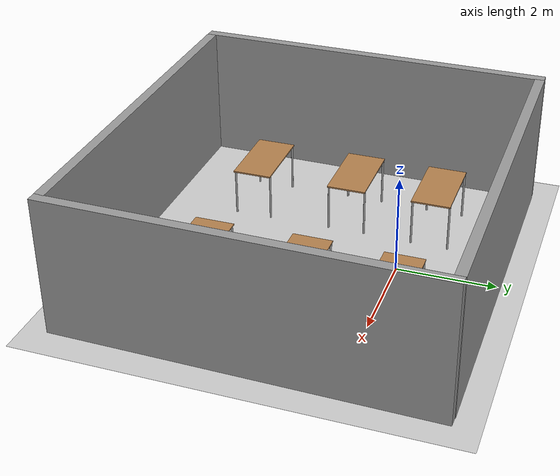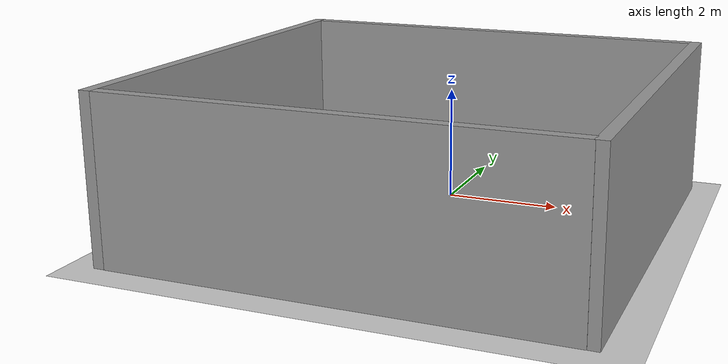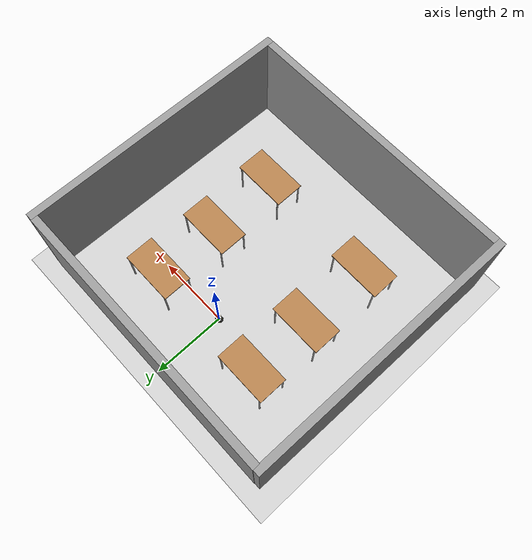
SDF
<sdf version="1.7">
 <world name="default">
  <light name="sun" type="directional">
   <pose>0 0 10 0 -0 0</pose>
   <diffuse>0.8 0.8 0.8 1</diffuse>
   <specular>0.2 0.2 0.2 1</specular>
   <attenuation>
    <range>1000</range>
    <constant>0.9</constant>
    <linear>0.01</linear>
    <quadratic>0.001</quadratic>
   </attenuation>
   <direction>-0.5 0.1 -0.9</direction>
   <spot><inner_angle>0</inner_angle><outer_angle>0</outer_angle><falloff>0</falloff></spot>
  </light>
  <model name="ground_plane">
   <static>1</static>
   <link name="link">
    <collision name="collision">
     <geometry><plane><normal>0 0 1</normal><size>100 100</size></plane></geometry>
     <surface>
      <contact><collide_bitmask>65535</collide_bitmask></contact>
      <friction><ode><mu>100</mu><mu2>50</mu2></ode></friction>
     </surface>
    </collision>
    <visual name="visual">
     <cast_shadows>0</cast_shadows>
     <geometry><plane><normal>0 0 1</normal><size>100 100</size></plane></geometry>
     <material>
      <script><uri>file://media/materials/scripts/gazebo.material</uri><name>Gazebo/Grey</name></script>
     </material>
    </visual>
   </link>
  </model>
  <gravity>0 0 -9.8</gravity>
  <magnetic_field>6e-06 2.3e-05 -4.2e-05</magnetic_field>
  <atmosphere type="adiabatic"/>
  <physics type="ode">
   <max_step_size>0.001</max_step_size>
   <real_time_factor>1</real_time_factor>
   <real_time_update_rate>1000</real_time_update_rate>
  </physics>
  <scene><ambient>0.4 0.4 0.4 1</ambient><background>0.7 0.7 0.7 1</background><shadows>1</shadows></scene>
  <spherical_coordinates>
   <surface_model>EARTH_WGS84</surface_model>
   <latitude_deg>0</latitude_deg>
   <longitude_deg>0</longitude_deg>
   <elevation>0</elevation>
   <heading_deg>0</heading_deg>
  </spherical_coordinates>
  <model name="elegoo_car_v3_description">
   <link name="base_link">
    <inertial>
     <pose>-0.015932 -0.000166 0.044202 0 -0 0</pose>
     <mass>0.468275</mass>
     <inertia>
      <ixx>0.000742718</ixx>
      <ixy>3.8042e-06</ixy>
      <ixz>0.000263808</ixz>
      <iyy>0.00224521</iyy>
      <iyz>1.31842e-06</iyz>
      <izz>0.00242747</izz>
     </inertia>
    </inertial>
    <collision name="base_link_collision">
     <geometry>
      <mesh>
       <scale>1 1 1</scale>
       <uri>/home/dan1620/aux_ws/src/smart_mini_car_robot_ros/elegoo_car_v3_description/meshes/base_link.STL</uri>
      </mesh>
     </geometry>
    </collision>
    <collision name="base_link_fixed_joint_lump__hex_support_1_collision_1">
     <geometry>
      <mesh>
       <scale>1 1 1</scale>
       <uri>/home/dan1620/aux_ws/src/smart_mini_car_robot_ros/elegoo_car_v3_description/meshes/hex_support_1.STL</uri>
      </mesh>
     </geometry>
    </collision>
    <collision name="base_link_fixed_joint_lump__hex_support_2_collision_2">
     <geometry>
      <mesh>
       <scale>1 1 1</scale>
       <uri>/home/dan1620/aux_ws/src/smart_mini_car_robot_ros/elegoo_car_v3_description/meshes/hex_support_2.STL</uri>
      </mesh>
     </geometry>
    </collision>
    <collision name="base_link_fixed_joint_lump__hex_support_3_collision_3">
     <geometry>
      <mesh>
       <scale>1 1 1</scale>
       <uri>/home/dan1620/aux_ws/src/smart_mini_car_robot_ros/elegoo_car_v3_description/meshes/hex_support_3.STL</uri>
      </mesh>
     </geometry>
    </collision>
    <collision name="base_link_fixed_joint_lump__hex_support_4_collision_4">
     <geometry>
      <mesh>
       <scale>1 1 1</scale>
       <uri>/home/dan1620/aux_ws/src/smart_mini_car_robot_ros/elegoo_car_v3_description/meshes/hex_support_4.STL</uri>
      </mesh>
     </geometry>
    </collision>
    <collision name="base_link_fixed_joint_lump__hex_support_5_collision_5">
     <geometry>
      <mesh>
       <scale>1 1 1</scale>
       <uri>/home/dan1620/aux_ws/src/smart_mini_car_robot_ros/elegoo_car_v3_description/meshes/hex_support_5.STL</uri>
      </mesh>
     </geometry>
    </collision>
    <collision name="base_link_fixed_joint_lump__hex_support_6_collision_6">
     <geometry>
      <mesh>
       <scale>1 1 1</scale>
       <uri>/home/dan1620/aux_ws/src/smart_mini_car_robot_ros/elegoo_car_v3_description/meshes/hex_support_6.STL</uri>
      </mesh>
     </geometry>
    </collision>
    <collision name="base_link_fixed_joint_lump__medium_plate_collision_7">
     <geometry>
      <mesh>
       <scale>1 1 1</scale>
       <uri>/home/dan1620/aux_ws/src/smart_mini_car_robot_ros/elegoo_car_v3_description/meshes/medium_plate.STL</uri>
      </mesh>
     </geometry>
    </collision>
    <collision name="base_link_fixed_joint_lump__arduino_collision_8">
     <geometry>
      <mesh>
       <scale>1 1 1</scale>
       <uri>/home/dan1620/aux_ws/src/smart_mini_car_robot_ros/elegoo_car_v3_description/meshes/arduino.STL</uri>
      </mesh>
     </geometry>
    </collision>
    <collision name="base_link_fixed_joint_lump__batery_collision_9">
     <geometry>
      <mesh>
       <scale>1 1 1</scale>
       <uri>/home/dan1620/aux_ws/src/smart_mini_car_robot_ros/elegoo_car_v3_description/meshes/batery.STL</uri>
      </mesh>
     </geometry>
    </collision>
    <collision name="base_link_fixed_joint_lump__servo_base_collision_10">
     <pose>0.09295 0.0001 0.0829 0 -0 0</pose>
     <geometry>
      <mesh>
       <scale>1 1 1</scale>
       <uri>/home/dan1620/aux_ws/src/smart_mini_car_robot_ros/elegoo_car_v3_description/meshes/servo_base.STL</uri>
      </mesh>
     </geometry>
    </collision>
    <collision name="base_link_fixed_joint_lump__servo_collision_11">
     <pose>0.09295 0.0001 0.0829 0 -0 0</pose>
     <geometry>
      <mesh>
       <scale>1 1 1</scale>
       <uri>/home/dan1620/aux_ws/src/smart_mini_car_robot_ros/elegoo_car_v3_description/meshes/servo.STL</uri>
      </mesh>
     </geometry>
    </collision>
    <collision name="base_link_fixed_joint_lump__support_1_collision_12">
     <pose>0.040775 0.027 0.03195 0 -0 0</pose>
     <geometry>
      <mesh>
       <scale>1 1 1</scale>
       <uri>/home/dan1620/aux_ws/src/smart_mini_car_robot_ros/elegoo_car_v3_description/meshes/support_1.STL</uri>
      </mesh>
     </geometry>
    </collision>
    <collision name="base_link_fixed_joint_lump__motor_1_collision_13">
     <pose>0.040775 0.027 0.03195 0 -0 0</pose>
     <geometry>
      <mesh>
       <scale>1 1 1</scale>
       <uri>/home/dan1620/aux_ws/src/smart_mini_car_robot_ros/elegoo_car_v3_description/meshes/motor_1.STL</uri>
      </mesh>
     </geometry>
    </collision>
    <collision name="base_link_fixed_joint_lump__support_2_collision_14">
     <pose>-0.040775 0.027 0.03195 0 -0 0</pose>
     <geometry>
      <mesh>
       <scale>1 1 1</scale>
       <uri>/home/dan1620/aux_ws/src/smart_mini_car_robot_ros/elegoo_car_v3_description/meshes/support_2.STL</uri>
      </mesh>
     </geometry>
    </collision>
    <collision name="base_link_fixed_joint_lump__motor_2_collision_15">
     <pose>-0.040775 0.027 0.03195 0 -0 0</pose>
     <geometry>
      <mesh>
       <scale>1 1 1</scale>
       <uri>/home/dan1620/aux_ws/src/smart_mini_car_robot_ros/elegoo_car_v3_description/meshes/motor_2.STL</uri>
      </mesh>
     </geometry>
    </collision>
    <collision name="base_link_fixed_joint_lump__support_3_collision_16">
     <pose>-0.040775 -0.027 0.03195 0 -0 0</pose>
     <geometry>
      <mesh>
       <scale>1 1 1</scale>
       <uri>/home/dan1620/aux_ws/src/smart_mini_car_robot_ros/elegoo_car_v3_description/meshes/support_3.STL</uri>
      </mesh>
     </geometry>
    </collision>
    <collision name="base_link_fixed_joint_lump__motor_3_collision_17">
     <pose>-0.040775 -0.027 0.03195 0 -0 0</pose>
     <geometry>
      <mesh>
       <scale>1 1 1</scale>
       <uri>/home/dan1620/aux_ws/src/smart_mini_car_robot_ros/elegoo_car_v3_description/meshes/motor_3.STL</uri>
      </mesh>
     </geometry>
    </collision>
    <collision name="base_link_fixed_joint_lump__suppport_4_collision_18">
     <pose>0.040775 -0.027 0.03195 0 -0 0</pose>
     <geometry>
      <mesh>
       <scale>1 1 1</scale>
       <uri>/home/dan1620/aux_ws/src/smart_mini_car_robot_ros/elegoo_car_v3_description/meshes/suppport_4.STL</uri>
      </mesh>
     </geometry>
    </collision>
    <collision name="base_link_fixed_joint_lump__motor_4_collision_19">
     <pose>0.040775 -0.027 0.03195 0 -0 0</pose>
     <geometry>
      <mesh>
       <scale>1 1 1</scale>
       <uri>/home/dan1620/aux_ws/src/smart_mini_car_robot_ros/elegoo_car_v3_description/meshes/motor_4.STL</uri>
      </mesh>
     </geometry>
    </collision>
    <visual name="base_link_visual">
     <geometry>
      <mesh>
       <scale>1 1 1</scale>
       <uri>/home/dan1620/aux_ws/src/smart_mini_car_robot_ros/elegoo_car_v3_description/meshes/base_link.STL</uri>
      </mesh>
     </geometry>
     <material>
      <script><name>Gazebo/FlatBlack</name><uri>file://media/materials/scripts/gazebo.material</uri></script>
     </material>
    </visual>
    <visual name="base_link_fixed_joint_lump__hex_support_1_visual_1">
     <geometry>
      <mesh>
       <scale>1 1 1</scale>
       <uri>/home/dan1620/aux_ws/src/smart_mini_car_robot_ros/elegoo_car_v3_description/meshes/hex_support_1.STL</uri>
      </mesh>
     </geometry>
     <material>
      <script><name>Gazebo/Gold</name><uri>file://media/materials/scripts/gazebo.material</uri></script>
     </material>
    </visual>
    <visual name="base_link_fixed_joint_lump__hex_support_2_visual_2">
     <geometry>
      <mesh>
       <scale>1 1 1</scale>
       <uri>/home/dan1620/aux_ws/src/smart_mini_car_robot_ros/elegoo_car_v3_description/meshes/hex_support_2.STL</uri>
      </mesh>
     </geometry>
     <material>
      <script><name>Gazebo/Gold</name><uri>file://media/materials/scripts/gazebo.material</uri></script>
     </material>
    </visual>
    <visual name="base_link_fixed_joint_lump__hex_support_3_visual_3">
     <geometry>
      <mesh>
       <scale>1 1 1</scale>
       <uri>/home/dan1620/aux_ws/src/smart_mini_car_robot_ros/elegoo_car_v3_description/meshes/hex_support_3.STL</uri>
      </mesh>
     </geometry>
     <material>
      <script><name>Gazebo/Gold</name><uri>file://media/materials/scripts/gazebo.material</uri></script>
     </material>
    </visual>
    <visual name="base_link_fixed_joint_lump__hex_support_4_visual_4">
     <geometry>
      <mesh>
       <scale>1 1 1</scale>
       <uri>/home/dan1620/aux_ws/src/smart_mini_car_robot_ros/elegoo_car_v3_description/meshes/hex_support_4.STL</uri>
      </mesh>
     </geometry>
     <material>
      <script><name>Gazebo/Gold</name><uri>file://media/materials/scripts/gazebo.material</uri></script>
     </material>
    </visual>
    <visual name="base_link_fixed_joint_lump__hex_support_5_visual_5">
     <geometry>
      <mesh>
       <scale>1 1 1</scale>
       <uri>/home/dan1620/aux_ws/src/smart_mini_car_robot_ros/elegoo_car_v3_description/meshes/hex_support_5.STL</uri>
      </mesh>
     </geometry>
     <material>
      <script><name>Gazebo/Gold</name><uri>file://media/materials/scripts/gazebo.material</uri></script>
     </material>
    </visual>
    <visual name="base_link_fixed_joint_lump__hex_support_6_visual_6">
     <geometry>
      <mesh>
       <scale>1 1 1</scale>
       <uri>/home/dan1620/aux_ws/src/smart_mini_car_robot_ros/elegoo_car_v3_description/meshes/hex_support_6.STL</uri>
      </mesh>
     </geometry>
     <material>
      <script><name>Gazebo/Gold</name><uri>file://media/materials/scripts/gazebo.material</uri></script>
     </material>
    </visual>
    <visual name="base_link_fixed_joint_lump__medium_plate_visual_7">
     <geometry>
      <mesh>
       <scale>1 1 1</scale>
       <uri>/home/dan1620/aux_ws/src/smart_mini_car_robot_ros/elegoo_car_v3_description/meshes/medium_plate.STL</uri>
      </mesh>
     </geometry>
     <material>
      <script><name>Gazebo/FlatBlack</name><uri>file://media/materials/scripts/gazebo.material</uri></script>
     </material>
    </visual>
    <visual name="base_link_fixed_joint_lump__arduino_visual_8">
     <geometry>
      <mesh>
       <scale>1 1 1</scale>
       <uri>/home/dan1620/aux_ws/src/smart_mini_car_robot_ros/elegoo_car_v3_description/meshes/arduino.STL</uri>
      </mesh>
     </geometry>
     <material>
      <script><name>Gazebo/DarkGray</name><uri>file://media/materials/scripts/gazebo.material</uri></script>
     </material>
    </visual>
    <visual name="base_link_fixed_joint_lump__batery_visual_9">
     <geometry>
      <mesh>
       <scale>1 1 1</scale>
       <uri>/home/dan1620/aux_ws/src/smart_mini_car_robot_ros/elegoo_car_v3_description/meshes/batery.STL</uri>
      </mesh>
     </geometry>
     <material>
      <script><name>Gazebo/FlatBlack</name><uri>file://media/materials/scripts/gazebo.material</uri></script>
     </material>
    </visual>
    <visual name="base_link_fixed_joint_lump__servo_base_visual_10">
     <pose>0.09295 0.0001 0.0829 0 -0 0</pose>
     <geometry>
      <mesh>
       <scale>1 1 1</scale>
       <uri>/home/dan1620/aux_ws/src/smart_mini_car_robot_ros/elegoo_car_v3_description/meshes/servo_base.STL</uri>
      </mesh>
     </geometry>
     <material>
      <script><name>Gazebo/Black</name><uri>file://media/materials/scripts/gazebo.material</uri></script>
     </material>
    </visual>
    <visual name="base_link_fixed_joint_lump__servo_visual_11">
     <pose>0.09295 0.0001 0.0829 0 -0 0</pose>
     <geometry>
      <mesh>
       <scale>1 1 1</scale>
       <uri>/home/dan1620/aux_ws/src/smart_mini_car_robot_ros/elegoo_car_v3_description/meshes/servo.STL</uri>
      </mesh>
     </geometry>
     <material>
      <script><name>Gazebo/Blue</name><uri>file://media/materials/scripts/gazebo.material</uri></script>
     </material>
    </visual>
    <visual name="base_link_fixed_joint_lump__support_1_visual_12">
     <pose>0.040775 0.027 0.03195 0 -0 0</pose>
     <geometry>
      <mesh>
       <scale>1 1 1</scale>
       <uri>/home/dan1620/aux_ws/src/smart_mini_car_robot_ros/elegoo_car_v3_description/meshes/support_1.STL</uri>
      </mesh>
     </geometry>
     <material>
      <script><name>Gazebo/Grey</name><uri>file://media/materials/scripts/gazebo.material</uri></script>
     </material>
    </visual>
    <visual name="base_link_fixed_joint_lump__motor_1_visual_13">
     <pose>0.040775 0.027 0.03195 0 -0 0</pose>
     <geometry>
      <mesh>
       <scale>1 1 1</scale>
       <uri>/home/dan1620/aux_ws/src/smart_mini_car_robot_ros/elegoo_car_v3_description/meshes/motor_1.STL</uri>
      </mesh>
     </geometry>
     <material>
      <script><name>Gazebo/Yellow</name><uri>file://media/materials/scripts/gazebo.material</uri></script>
     </material>
    </visual>
    <visual name="base_link_fixed_joint_lump__support_2_visual_14">
     <pose>-0.040775 0.027 0.03195 0 -0 0</pose>
     <geometry>
      <mesh>
       <scale>1 1 1</scale>
       <uri>/home/dan1620/aux_ws/src/smart_mini_car_robot_ros/elegoo_car_v3_description/meshes/support_2.STL</uri>
      </mesh>
     </geometry>
     <material>
      <script><name>Gazebo/Grey</name><uri>file://media/materials/scripts/gazebo.material</uri></script>
     </material>
    </visual>
    <visual name="base_link_fixed_joint_lump__motor_2_visual_15">
     <pose>-0.040775 0.027 0.03195 0 -0 0</pose>
     <geometry>
      <mesh>
       <scale>1 1 1</scale>
       <uri>/home/dan1620/aux_ws/src/smart_mini_car_robot_ros/elegoo_car_v3_description/meshes/motor_2.STL</uri>
      </mesh>
     </geometry>
     <material>
      <script><name>Gazebo/Yellow</name><uri>file://media/materials/scripts/gazebo.material</uri></script>
     </material>
    </visual>
    <visual name="base_link_fixed_joint_lump__support_3_visual_16">
     <pose>-0.040775 -0.027 0.03195 0 -0 0</pose>
     <geometry>
      <mesh>
       <scale>1 1 1</scale>
       <uri>/home/dan1620/aux_ws/src/smart_mini_car_robot_ros/elegoo_car_v3_description/meshes/support_3.STL</uri>
      </mesh>
     </geometry>
     <material>
      <script><name>Gazebo/Grey</name><uri>file://media/materials/scripts/gazebo.material</uri></script>
     </material>
    </visual>
    <visual name="base_link_fixed_joint_lump__motor_3_visual_17">
     <pose>-0.040775 -0.027 0.03195 0 -0 0</pose>
     <geometry>
      <mesh>
       <scale>1 1 1</scale>
       <uri>/home/dan1620/aux_ws/src/smart_mini_car_robot_ros/elegoo_car_v3_description/meshes/motor_3.STL</uri>
      </mesh>
     </geometry>
     <material>
      <script><name>Gazebo/Yellow</name><uri>file://media/materials/scripts/gazebo.material</uri></script>
     </material>
    </visual>
    <visual name="base_link_fixed_joint_lump__suppport_4_visual_18">
     <pose>0.040775 -0.027 0.03195 0 -0 0</pose>
     <geometry>
      <mesh>
       <scale>1 1 1</scale>
       <uri>/home/dan1620/aux_ws/src/smart_mini_car_robot_ros/elegoo_car_v3_description/meshes/suppport_4.STL</uri>
      </mesh>
     </geometry>
    </visual>
    <visual name="base_link_fixed_joint_lump__motor_4_visual_19">
     <pose>0.040775 -0.027 0.03195 0 -0 0</pose>
     <geometry>
      <mesh>
       <scale>1 1 1</scale>
       <uri>/home/dan1620/aux_ws/src/smart_mini_car_robot_ros/elegoo_car_v3_description/meshes/motor_4.STL</uri>
      </mesh>
     </geometry>
     <material>
      <script><name>Gazebo/Yellow</name><uri>file://media/materials/scripts/gazebo.material</uri></script>
     </material>
    </visual>
   </link>
   <joint name="servo_to_shaft" type="revolute">
    <pose relative_to="base_link">0.09295 0.0001 0.0829 0 -0 0</pose>
    <parent>base_link</parent>
    <child>servo_shaft</child>
    <axis>
     <xyz>0 0 1</xyz>
     <limit><effort>0.0907</effort><velocity>0.7</velocity><lower>-1e+16</lower><upper>1e+16</upper></limit>
     <dynamics><spring_reference>0</spring_reference><spring_stiffness>0</spring_stiffness></dynamics>
    </axis>
   </joint>
   <link name="servo_shaft">
    <pose relative_to="servo_to_shaft">0 0 0 0 -0 0</pose>
    <inertial>
     <pose>0.009808 -5e-06 0.020358 0 -0 0</pose>
     <mass>0.0159664</mass>
     <inertia>
      <ixx>4.09729e-06</ixx>
      <ixy>-1.24826e-09</ixy>
      <ixz>-3.55825e-07</ixz>
      <iyy>1.83275e-06</iyy>
      <iyz>1.76037e-10</iyz>
      <izz>3.30479e-06</izz>
     </inertia>
    </inertial>
    <collision name="servo_shaft_collision">
     <geometry>
      <mesh>
       <scale>1 1 1</scale>
       <uri>/home/dan1620/aux_ws/src/smart_mini_car_robot_ros/elegoo_car_v3_description/meshes/servo_shaft.STL</uri>
      </mesh>
     </geometry>
    </collision>
    <collision name="servo_shaft_fixed_joint_lump__ultrasonic_support_collision_1">
     <geometry>
      <mesh>
       <scale>1 1 1</scale>
       <uri>/home/dan1620/aux_ws/src/smart_mini_car_robot_ros/elegoo_car_v3_description/meshes/ultrasonic_support.STL</uri>
      </mesh>
     </geometry>
    </collision>
    <collision name="servo_shaft_fixed_joint_lump__ultrasonic_sensor_collision_2">
     <geometry>
      <mesh>
       <scale>1 1 1</scale>
       <uri>/home/dan1620/aux_ws/src/smart_mini_car_robot_ros/elegoo_car_v3_description/meshes/ultrasonic_sensor.STL</uri>
      </mesh>
     </geometry>
    </collision>
    <visual name="servo_shaft_visual">
     <geometry>
      <mesh>
       <scale>1 1 1</scale>
       <uri>/home/dan1620/aux_ws/src/smart_mini_car_robot_ros/elegoo_car_v3_description/meshes/servo_shaft.STL</uri>
      </mesh>
     </geometry>
     <material>
      <script><name>Gazebo/Grey</name><uri>file://media/materials/scripts/gazebo.material</uri></script>
     </material>
    </visual>
    <visual name="servo_shaft_fixed_joint_lump__ultrasonic_support_visual_1">
     <geometry>
      <mesh>
       <scale>1 1 1</scale>
       <uri>/home/dan1620/aux_ws/src/smart_mini_car_robot_ros/elegoo_car_v3_description/meshes/ultrasonic_support.STL</uri>
      </mesh>
     </geometry>
     <material>
      <script><name>Gazebo/Black</name><uri>file://media/materials/scripts/gazebo.material</uri></script>
     </material>
    </visual>
    <visual name="servo_shaft_fixed_joint_lump__ultrasonic_sensor_visual_2">
     <geometry>
      <mesh>
       <scale>1 1 1</scale>
       <uri>/home/dan1620/aux_ws/src/smart_mini_car_robot_ros/elegoo_car_v3_description/meshes/ultrasonic_sensor.STL</uri>
      </mesh>
     </geometry>
     <material>
      <script><name>Gazebo/Blue</name><uri>file://media/materials/scripts/gazebo.material</uri></script>
     </material>
    </visual>
    <sensor name="sonar" type="ray">
     <update_rate>5</update_rate>
     <ray>
      <scan>
       <horizontal>
        <samples>5</samples>
        <resolution>1</resolution>
        <min_angle>-0.15</min_angle>
        <max_angle>0.15</max_angle>
       </horizontal>
       <vertical>
        <samples>5</samples>
        <resolution>1</resolution>
        <min_angle>-0.15</min_angle>
        <max_angle>0.15</max_angle>
       </vertical>
      </scan>
      <range><min>0.04</min><max>0.9</max><resolution>0.01</resolution></range>
     </ray>
     <plugin name="gazebo_ros_range" filename="libgazebo_ros_range.so">
      <gaussianNoise>0.005</gaussianNoise>
      <alwaysOn>1</alwaysOn>
      <updateRate>5</updateRate>
      <topicName>sonar</topicName>
      <frameName>ultrasonic_sensor</frameName>
      <fov>0.5</fov>
      <radiation>ultrasound</radiation>
      <robotNamespace>/</robotNamespace>
     </plugin>
     <pose>0.02 0 0.04 3.14159 -1.57079 3.14159</pose>
    </sensor>
   </link>
   <joint name="motor_to_shaft_1" type="revolute">
    <pose relative_to="base_link">0.040775 0.027 0.03195 0 -0 0</pose>
    <parent>base_link</parent>
    <child>shaft_1</child>
    <axis>
     <xyz>0 1 0</xyz>
     <limit><effort>0.09807</effort><velocity>23</velocity><lower>-1e+16</lower><upper>1e+16</upper></limit>
     <dynamics><spring_reference>0</spring_reference><spring_stiffness>0</spring_stiffness></dynamics>
    </axis>
   </joint>
   <link name="shaft_1">
    <pose relative_to="motor_to_shaft_1">0 0 0 0 -0 0</pose>
    <inertial>
     <pose>-0 0.043607 -0 0 -0 0</pose>
     <mass>0.0614214</mass>
     <inertia>
      <ixx>2.54849e-05</ixx>
      <ixy>4.47094e-13</ixy>
      <ixz>-1.11546e-12</ixz>
      <iyy>4.28891e-05</iyy>
      <iyz>1.13462e-13</iyz>
      <izz>2.54849e-05</izz>
     </inertia>
    </inertial>
    <collision name="shaft_1_collision">
     <geometry>
      <mesh>
       <scale>1 1 1</scale>
       <uri>/home/dan1620/aux_ws/src/smart_mini_car_robot_ros/elegoo_car_v3_description/meshes/shaft_1.STL</uri>
      </mesh>
     </geometry>
    </collision>
    <collision name="shaft_1_fixed_joint_lump__ring_1_collision_1">
     <geometry>
      <mesh>
       <scale>1 1 1</scale>
       <uri>/home/dan1620/aux_ws/src/smart_mini_car_robot_ros/elegoo_car_v3_description/meshes/ring_1.STL</uri>
      </mesh>
     </geometry>
    </collision>
    <collision name="shaft_1_fixed_joint_lump__neumatic_1_collision_2">
     <geometry>
      <mesh>
       <scale>1 1 1</scale>
       <uri>/home/dan1620/aux_ws/src/smart_mini_car_robot_ros/elegoo_car_v3_description/meshes/neumatic_1.STL</uri>
      </mesh>
     </geometry>
     <surface>
      <contact><ode><kp>500000</kp><kd>10</kd><max_vel>0.1</max_vel><min_depth>0.001</min_depth></ode></contact>
      <friction><ode><mu>0.1</mu><mu2>0.1</mu2><fdir1>1 0 0</fdir1></ode></friction>
     </surface>
    </collision>
    <visual name="shaft_1_visual">
     <geometry>
      <mesh>
       <scale>1 1 1</scale>
       <uri>/home/dan1620/aux_ws/src/smart_mini_car_robot_ros/elegoo_car_v3_description/meshes/shaft_1.STL</uri>
      </mesh>
     </geometry>
     <material>
      <script><name>Gazebo/Grey</name><uri>file://media/materials/scripts/gazebo.material</uri></script>
     </material>
    </visual>
    <visual name="shaft_1_fixed_joint_lump__ring_1_visual_1">
     <geometry>
      <mesh>
       <scale>1 1 1</scale>
       <uri>/home/dan1620/aux_ws/src/smart_mini_car_robot_ros/elegoo_car_v3_description/meshes/ring_1.STL</uri>
      </mesh>
     </geometry>
     <material>
      <script><name>Gazebo/Yellow</name><uri>file://media/materials/scripts/gazebo.material</uri></script>
     </material>
    </visual>
    <visual name="shaft_1_fixed_joint_lump__neumatic_1_visual_2">
     <geometry>
      <mesh>
       <scale>1 1 1</scale>
       <uri>/home/dan1620/aux_ws/src/smart_mini_car_robot_ros/elegoo_car_v3_description/meshes/neumatic_1.STL</uri>
      </mesh>
     </geometry>
     <material>
      <script><name>Gazebo/FlatBlack</name><uri>file://media/materials/scripts/gazebo.material</uri></script>
     </material>
    </visual>
   </link>
   <joint name="motor_to_shaft_2" type="revolute">
    <pose relative_to="base_link">-0.040775 0.027 0.03195 0 -0 0</pose>
    <parent>base_link</parent>
    <child>shaft_2</child>
    <axis>
     <xyz>0 1 0</xyz>
     <limit><effort>0.09807</effort><velocity>23</velocity><lower>-1e+16</lower><upper>1e+16</upper></limit>
     <dynamics><spring_reference>0</spring_reference><spring_stiffness>0</spring_stiffness></dynamics>
    </axis>
   </joint>
   <link name="shaft_2">
    <pose relative_to="motor_to_shaft_2">0 0 0 0 -0 0</pose>
    <inertial>
     <pose>0 0.043607 -0 0 -0 0</pose>
     <mass>0.0614214</mass>
     <inertia>
      <ixx>2.54849e-05</ixx>
      <ixy>-3.45515e-13</ixy>
      <ixz>1.43964e-12</ixz>
      <iyy>4.28891e-05</iyy>
      <iyz>3.05554e-13</iyz>
      <izz>2.54849e-05</izz>
     </inertia>
    </inertial>
    <collision name="shaft_2_collision">
     <geometry>
      <mesh>
       <scale>1 1 1</scale>
       <uri>/home/dan1620/aux_ws/src/smart_mini_car_robot_ros/elegoo_car_v3_description/meshes/shaft_2.STL</uri>
      </mesh>
     </geometry>
    </collision>
    <collision name="shaft_2_fixed_joint_lump__ring_2_collision_1">
     <geometry>
      <mesh>
       <scale>1 1 1</scale>
       <uri>/home/dan1620/aux_ws/src/smart_mini_car_robot_ros/elegoo_car_v3_description/meshes/ring_2.STL</uri>
      </mesh>
     </geometry>
    </collision>
    <collision name="shaft_2_fixed_joint_lump__neumatic_2_collision_2">
     <geometry>
      <mesh>
       <scale>1 1 1</scale>
       <uri>/home/dan1620/aux_ws/src/smart_mini_car_robot_ros/elegoo_car_v3_description/meshes/neumatic_2.STL</uri>
      </mesh>
     </geometry>
     <surface>
      <contact><ode><kp>500000</kp><kd>10</kd><max_vel>0.1</max_vel><min_depth>0.001</min_depth></ode></contact>
      <friction><ode><mu>0.1</mu><mu2>0.1</mu2><fdir1>1 0 0</fdir1></ode></friction>
     </surface>
    </collision>
    <visual name="shaft_2_visual">
     <geometry>
      <mesh>
       <scale>1 1 1</scale>
       <uri>/home/dan1620/aux_ws/src/smart_mini_car_robot_ros/elegoo_car_v3_description/meshes/shaft_2.STL</uri>
      </mesh>
     </geometry>
     <material>
      <script><name>Gazebo/Grey</name><uri>file://media/materials/scripts/gazebo.material</uri></script>
     </material>
    </visual>
    <visual name="shaft_2_fixed_joint_lump__ring_2_visual_1">
     <geometry>
      <mesh>
       <scale>1 1 1</scale>
       <uri>/home/dan1620/aux_ws/src/smart_mini_car_robot_ros/elegoo_car_v3_description/meshes/ring_2.STL</uri>
      </mesh>
     </geometry>
     <material>
      <script><name>Gazebo/Yellow</name><uri>file://media/materials/scripts/gazebo.material</uri></script>
     </material>
    </visual>
    <visual name="shaft_2_fixed_joint_lump__neumatic_2_visual_2">
     <geometry>
      <mesh>
       <scale>1 1 1</scale>
       <uri>/home/dan1620/aux_ws/src/smart_mini_car_robot_ros/elegoo_car_v3_description/meshes/neumatic_2.STL</uri>
      </mesh>
     </geometry>
     <material>
      <script><name>Gazebo/FlatBlack</name><uri>file://media/materials/scripts/gazebo.material</uri></script>
     </material>
    </visual>
   </link>
   <joint name="motor_to_shaft_3" type="revolute">
    <pose relative_to="base_link">-0.040775 -0.027 0.03195 0 -0 0</pose>
    <parent>base_link</parent>
    <child>shaft_3</child>
    <axis>
     <xyz>0 1 0</xyz>
     <limit><effort>0.09807</effort><velocity>23</velocity><lower>-1e+16</lower><upper>1e+16</upper></limit>
     <dynamics><spring_reference>0</spring_reference><spring_stiffness>0</spring_stiffness></dynamics>
    </axis>
   </joint>
   <link name="shaft_3">
    <pose relative_to="motor_to_shaft_3">0 0 0 0 -0 0</pose>
    <inertial>
     <pose>-0 -0.043607 0 0 -0 0</pose>
     <mass>0.0614214</mass>
     <inertia>
      <ixx>2.54849e-05</ixx>
      <ixy>-4.47067e-13</ixy>
      <ixz>1.11546e-12</ixz>
      <iyy>4.28891e-05</iyy>
      <iyz>1.13485e-13</iyz>
      <izz>2.54849e-05</izz>
     </inertia>
    </inertial>
    <collision name="shaft_3_collision">
     <geometry>
      <mesh>
       <scale>1 1 1</scale>
       <uri>/home/dan1620/aux_ws/src/smart_mini_car_robot_ros/elegoo_car_v3_description/meshes/shaft_3.STL</uri>
      </mesh>
     </geometry>
    </collision>
    <collision name="shaft_3_fixed_joint_lump__ring_3_collision_1">
     <geometry>
      <mesh>
       <scale>1 1 1</scale>
       <uri>/home/dan1620/aux_ws/src/smart_mini_car_robot_ros/elegoo_car_v3_description/meshes/ring_3.STL</uri>
      </mesh>
     </geometry>
    </collision>
    <collision name="shaft_3_fixed_joint_lump__neumatic_3_collision_2">
     <geometry>
      <mesh>
       <scale>1 1 1</scale>
       <uri>/home/dan1620/aux_ws/src/smart_mini_car_robot_ros/elegoo_car_v3_description/meshes/neumatic_3.STL</uri>
      </mesh>
     </geometry>
     <surface>
      <contact><ode><kp>500000</kp><kd>10</kd><max_vel>0.1</max_vel><min_depth>0.001</min_depth></ode></contact>
      <friction><ode><mu>0.1</mu><mu2>0.1</mu2><fdir1>1 0 0</fdir1></ode></friction>
     </surface>
    </collision>
    <visual name="shaft_3_visual">
     <geometry>
      <mesh>
       <scale>1 1 1</scale>
       <uri>/home/dan1620/aux_ws/src/smart_mini_car_robot_ros/elegoo_car_v3_description/meshes/shaft_3.STL</uri>
      </mesh>
     </geometry>
     <material>
      <script><name>Gazebo/Grey</name><uri>file://media/materials/scripts/gazebo.material</uri></script>
     </material>
    </visual>
    <visual name="shaft_3_fixed_joint_lump__ring_3_visual_1">
     <geometry>
      <mesh>
       <scale>1 1 1</scale>
       <uri>/home/dan1620/aux_ws/src/smart_mini_car_robot_ros/elegoo_car_v3_description/meshes/ring_3.STL</uri>
      </mesh>
     </geometry>
     <material>
      <script><name>Gazebo/Yellow</name><uri>file://media/materials/scripts/gazebo.material</uri></script>
     </material>
    </visual>
    <visual name="shaft_3_fixed_joint_lump__neumatic_3_visual_2">
     <geometry>
      <mesh>
       <scale>1 1 1</scale>
       <uri>/home/dan1620/aux_ws/src/smart_mini_car_robot_ros/elegoo_car_v3_description/meshes/neumatic_3.STL</uri>
      </mesh>
     </geometry>
     <material>
      <script><name>Gazebo/FlatBlack</name><uri>file://media/materials/scripts/gazebo.material</uri></script>
     </material>
    </visual>
   </link>
   <joint name="motor_to_shaft_4" type="revolute">
    <pose relative_to="base_link">0.040775 -0.027 0.03195 0 -0 0</pose>
    <parent>base_link</parent>
    <child>shaft_4</child>
    <axis>
     <xyz>0 1 0</xyz>
     <limit><effort>0.09807</effort><velocity>23</velocity><lower>-1e+16</lower><upper>1e+16</upper></limit>
     <dynamics><spring_reference>0</spring_reference><spring_stiffness>0</spring_stiffness></dynamics>
    </axis>
   </joint>
   <link name="shaft_4">
    <pose relative_to="motor_to_shaft_4">0 0 0 0 -0 0</pose>
    <inertial>
     <pose>0 -0.043607 0 0 -0 0</pose>
     <mass>0.0614214</mass>
     <inertia>
      <ixx>2.54849e-05</ixx>
      <ixy>3.4553e-13</ixy>
      <ixz>-1.43964e-12</ixz>
      <iyy>4.28891e-05</iyy>
      <iyz>3.05586e-13</iyz>
      <izz>2.54849e-05</izz>
     </inertia>
    </inertial>
    <collision name="shaft_4_collision">
     <geometry>
      <mesh>
       <scale>1 1 1</scale>
       <uri>/home/dan1620/aux_ws/src/smart_mini_car_robot_ros/elegoo_car_v3_description/meshes/shaft_4.STL</uri>
      </mesh>
     </geometry>
    </collision>
    <collision name="shaft_4_fixed_joint_lump__ring_4_collision_1">
     <geometry>
      <mesh>
       <scale>1 1 1</scale>
       <uri>/home/dan1620/aux_ws/src/smart_mini_car_robot_ros/elegoo_car_v3_description/meshes/ring_4.STL</uri>
      </mesh>
     </geometry>
    </collision>
    <collision name="shaft_4_fixed_joint_lump__neumatic_4_collision_2">
     <geometry>
      <mesh>
       <scale>1 1 1</scale>
       <uri>/home/dan1620/aux_ws/src/smart_mini_car_robot_ros/elegoo_car_v3_description/meshes/neumatic_4.STL</uri>
      </mesh>
     </geometry>
     <surface>
      <contact><ode><kp>500000</kp><kd>10</kd><max_vel>0.1</max_vel><min_depth>0.001</min_depth></ode></contact>
      <friction><ode><mu>0.1</mu><mu2>0.1</mu2><fdir1>1 0 0</fdir1></ode></friction>
     </surface>
    </collision>
    <visual name="shaft_4_visual">
     <geometry>
      <mesh>
       <scale>1 1 1</scale>
       <uri>/home/dan1620/aux_ws/src/smart_mini_car_robot_ros/elegoo_car_v3_description/meshes/shaft_4.STL</uri>
      </mesh>
     </geometry>
     <material>
      <script><name>Gazebo/Grey</name><uri>file://media/materials/scripts/gazebo.material</uri></script>
     </material>
    </visual>
    <visual name="shaft_4_fixed_joint_lump__ring_4_visual_1">
     <geometry>
      <mesh>
       <scale>1 1 1</scale>
       <uri>/home/dan1620/aux_ws/src/smart_mini_car_robot_ros/elegoo_car_v3_description/meshes/ring_4.STL</uri>
      </mesh>
     </geometry>
     <material>
      <script><name>Gazebo/Yellow</name><uri>file://media/materials/scripts/gazebo.material</uri></script>
     </material>
    </visual>
    <visual name="shaft_4_fixed_joint_lump__neumatic_4_visual_2">
     <geometry>
      <mesh>
       <scale>1 1 1</scale>
       <uri>/home/dan1620/aux_ws/src/smart_mini_car_robot_ros/elegoo_car_v3_description/meshes/neumatic_4.STL</uri>
      </mesh>
     </geometry>
     <material>
      <script><name>Gazebo/FlatBlack</name><uri>file://media/materials/scripts/gazebo.material</uri></script>
     </material>
    </visual>
   </link>
   <static>0</static>
   <plugin name="skid_steer_drive_controller" filename="libgazebo_ros_skid_steer_drive.so">
    <updateRate>100.0</updateRate>
    <robotNamespace>/</robotNamespace>
    <leftFrontJoint>motor_to_shaft_1</leftFrontJoint>
    <rightFrontJoint>motor_to_shaft_4</rightFrontJoint>
    <rightRearJoint>motor_to_shaft_3</rightRearJoint>
    <leftRearJoint>motor_to_shaft_2</leftRearJoint>
    <wheelSeparation>0.11631</wheelSeparation>
    <wheelDiameter>0.06405</wheelDiameter>
    <robotBaseFrame>base_link</robotBaseFrame>
    <torque>20</torque>
    <topicName>cmd_vel</topicName>
    <broadcastTF>1</broadcastTF>
    <covariance_x>0.0001</covariance_x>
    <covariance_y>0.0001</covariance_y>
    <covariance_yaw>0.01</covariance_yaw>
    <topicName>cmd_vel</topicName>
    <commandTopic>cmd_vel</commandTopic>
    <odometryTopic>odom</odometryTopic>
    <odometryFrame>odom</odometryFrame>
    <topic_name_joint>joint</topic_name_joint>
   </plugin>
   <pose>-0.0033 0.000136 -0.000441 -0.000598 -0.00548 0.003521</pose>
  </model>
  <model name="grey_wall">
   <static>1</static>
   <link name="link">
    <pose>0 0 1.4 0 -0 0</pose>
    <collision name="collision"><geometry><box><size>7.5 0.2 2.8</size></box></geometry></collision>
    <visual name="visual">
     <cast_shadows>0</cast_shadows>
     <geometry><box><size>7.5 0.2 2.8</size></box></geometry>
     <material>
      <script>
       <uri>model://grey_wall/materials/scripts</uri>
       <uri>model://grey_wall/materials/textures</uri>
       <name>vrc/grey_wall</name>
      </script>
     </material>
    </visual>
   </link>
   <pose>0.167216 1.96885 0 0 -0 0</pose>
  </model>
  <model name="grey_wall_0">
   <static>1</static>
   <link name="link">
    <pose>0 0 1.4 0 -0 0</pose>
    <collision name="collision"><geometry><box><size>7.5 0.2 2.8</size></box></geometry></collision>
    <visual name="visual">
     <cast_shadows>0</cast_shadows>
     <geometry><box><size>7.5 0.2 2.8</size></box></geometry>
     <material>
      <script>
       <uri>model://grey_wall/materials/scripts</uri>
       <uri>model://grey_wall/materials/textures</uri>
       <name>vrc/grey_wall</name>
      </script>
     </material>
    </visual>
   </link>
   <pose>0.093637 -5.34619 0 0 -0 0</pose>
  </model>
  <model name="grey_wall_1">
   <static>1</static>
   <link name="link">
    <pose>0 0 1.4 0 -0 0</pose>
    <collision name="collision"><geometry><box><size>7.5 0.2 2.8</size></box></geometry></collision>
    <visual name="visual">
     <cast_shadows>0</cast_shadows>
     <geometry><box><size>7.5 0.2 2.8</size></box></geometry>
     <material>
      <script>
       <uri>model://grey_wall/materials/scripts</uri>
       <uri>model://grey_wall/materials/textures</uri>
       <name>vrc/grey_wall</name>
      </script>
     </material>
    </visual>
   </link>
   <pose>-3.70923 -1.68984 0 0 0 -1.583</pose>
  </model>
  <model name="grey_wall_1_clone">
   <static>1</static>
   <link name="link">
    <pose>0 0 1.4 0 -0 0</pose>
    <collision name="collision"><geometry><box><size>7.5 0.2 2.8</size></box></geometry></collision>
    <visual name="visual">
     <cast_shadows>0</cast_shadows>
     <geometry><box><size>7.5 0.2 2.8</size></box></geometry>
     <material>
      <script>
       <uri>model://grey_wall/materials/scripts</uri>
       <uri>model://grey_wall/materials/textures</uri>
       <name>vrc/grey_wall</name>
      </script>
     </material>
    </visual>
   </link>
   <pose>3.97097 -1.69351 0 0 0 -1.583</pose>
  </model>
  <model name="table">
   <static>1</static>
   <link name="link">
    <collision name="surface">
     <pose>0 0 1 0 -0 0</pose>
     <geometry><box><size>1.5 0.8 0.03</size></box></geometry>
     <surface><friction><ode><mu>0.6</mu><mu2>0.6</mu2></ode></friction></surface>
    </collision>
    <visual name="visual1">
     <pose>0 0 1 0 -0 0</pose>
     <geometry><box><size>1.5 0.8 0.03</size></box></geometry>
     <material>
      <script><uri>file://media/materials/scripts/gazebo.material</uri><name>Gazebo/Wood</name></script>
     </material>
    </visual>
    <collision name="front_left_leg">
     <pose>0.68 0.38 0.5 0 -0 0</pose>
     <geometry><cylinder><radius>0.02</radius><length>1</length></cylinder></geometry>
    </collision>
    <visual name="front_left_leg">
     <pose>0.68 0.38 0.5 0 -0 0</pose>
     <geometry><cylinder><radius>0.02</radius><length>1</length></cylinder></geometry>
     <material>
      <script><uri>file://media/materials/scripts/gazebo.material</uri><name>Gazebo/Grey</name></script>
     </material>
    </visual>
    <collision name="front_right_leg">
     <pose>0.68 -0.38 0.5 0 -0 0</pose>
     <geometry><cylinder><radius>0.02</radius><length>1</length></cylinder></geometry>
    </collision>
    <visual name="front_right_leg">
     <pose>0.68 -0.38 0.5 0 -0 0</pose>
     <geometry><cylinder><radius>0.02</radius><length>1</length></cylinder></geometry>
     <material>
      <script><uri>file://media/materials/scripts/gazebo.material</uri><name>Gazebo/Grey</name></script>
     </material>
    </visual>
    <collision name="back_right_leg">
     <pose>-0.68 -0.38 0.5 0 -0 0</pose>
     <geometry><cylinder><radius>0.02</radius><length>1</length></cylinder></geometry>
    </collision>
    <visual name="back_right_leg">
     <pose>-0.68 -0.38 0.5 0 -0 0</pose>
     <geometry><cylinder><radius>0.02</radius><length>1</length></cylinder></geometry>
     <material>
      <script><uri>file://media/materials/scripts/gazebo.material</uri><name>Gazebo/Grey</name></script>
     </material>
    </visual>
    <collision name="back_left_leg">
     <pose>-0.68 0.38 0.5 0 -0 0</pose>
     <geometry><cylinder><radius>0.02</radius><length>1</length></cylinder></geometry>
    </collision>
    <visual name="back_left_leg">
     <pose>-0.68 0.38 0.5 0 -0 0</pose>
     <geometry><cylinder><radius>0.02</radius><length>1</length></cylinder></geometry>
     <material>
      <script><uri>file://media/materials/scripts/gazebo.material</uri><name>Gazebo/Grey</name></script>
     </material>
    </visual>
   </link>
   <pose>1.74196 0.403018 0 0 -0 0</pose>
  </model>
  <model name="table_clone">
   <static>1</static>
   <link name="link">
    <collision name="surface">
     <pose>0 0 1 0 -0 0</pose>
     <geometry><box><size>1.5 0.8 0.03</size></box></geometry>
     <surface><friction><ode><mu>0.6</mu><mu2>0.6</mu2></ode></friction></surface>
    </collision>
    <visual name="visual1">
     <pose>0 0 1 0 -0 0</pose>
     <geometry><box><size>1.5 0.8 0.03</size></box></geometry>
     <material>
      <script><uri>file://media/materials/scripts/gazebo.material</uri><name>Gazebo/Wood</name></script>
     </material>
    </visual>
    <collision name="front_left_leg">
     <pose>0.68 0.38 0.5 0 -0 0</pose>
     <geometry><cylinder><radius>0.02</radius><length>1</length></cylinder></geometry>
    </collision>
    <visual name="front_left_leg">
     <pose>0.68 0.38 0.5 0 -0 0</pose>
     <geometry><cylinder><radius>0.02</radius><length>1</length></cylinder></geometry>
     <material>
      <script><uri>file://media/materials/scripts/gazebo.material</uri><name>Gazebo/Grey</name></script>
     </material>
    </visual>
    <collision name="front_right_leg">
     <pose>0.68 -0.38 0.5 0 -0 0</pose>
     <geometry><cylinder><radius>0.02</radius><length>1</length></cylinder></geometry>
    </collision>
    <visual name="front_right_leg">
     <pose>0.68 -0.38 0.5 0 -0 0</pose>
     <geometry><cylinder><radius>0.02</radius><length>1</length></cylinder></geometry>
     <material>
      <script><uri>file://media/materials/scripts/gazebo.material</uri><name>Gazebo/Grey</name></script>
     </material>
    </visual>
    <collision name="back_right_leg">
     <pose>-0.68 -0.38 0.5 0 -0 0</pose>
     <geometry><cylinder><radius>0.02</radius><length>1</length></cylinder></geometry>
    </collision>
    <visual name="back_right_leg">
     <pose>-0.68 -0.38 0.5 0 -0 0</pose>
     <geometry><cylinder><radius>0.02</radius><length>1</length></cylinder></geometry>
     <material>
      <script><uri>file://media/materials/scripts/gazebo.material</uri><name>Gazebo/Grey</name></script>
     </material>
    </visual>
    <collision name="back_left_leg">
     <pose>-0.68 0.38 0.5 0 -0 0</pose>
     <geometry><cylinder><radius>0.02</radius><length>1</length></cylinder></geometry>
    </collision>
    <visual name="back_left_leg">
     <pose>-0.68 0.38 0.5 0 -0 0</pose>
     <geometry><cylinder><radius>0.02</radius><length>1</length></cylinder></geometry>
     <material>
      <script><uri>file://media/materials/scripts/gazebo.material</uri><name>Gazebo/Grey</name></script>
     </material>
    </visual>
   </link>
   <pose>1.6919 -1.40659 0 0 -0 0</pose>
  </model>
  <model name="table_clone_0">
   <static>1</static>
   <link name="link">
    <collision name="surface">
     <pose>0 0 1 0 -0 0</pose>
     <geometry><box><size>1.5 0.8 0.03</size></box></geometry>
     <surface><friction><ode><mu>0.6</mu><mu2>0.6</mu2></ode></friction></surface>
    </collision>
    <visual name="visual1">
     <pose>0 0 1 0 -0 0</pose>
     <geometry><box><size>1.5 0.8 0.03</size></box></geometry>
     <material>
      <script><uri>file://media/materials/scripts/gazebo.material</uri><name>Gazebo/Wood</name></script>
     </material>
    </visual>
    <collision name="front_left_leg">
     <pose>0.68 0.38 0.5 0 -0 0</pose>
     <geometry><cylinder><radius>0.02</radius><length>1</length></cylinder></geometry>
    </collision>
    <visual name="front_left_leg">
     <pose>0.68 0.38 0.5 0 -0 0</pose>
     <geometry><cylinder><radius>0.02</radius><length>1</length></cylinder></geometry>
     <material>
      <script><uri>file://media/materials/scripts/gazebo.material</uri><name>Gazebo/Grey</name></script>
     </material>
    </visual>
    <collision name="front_right_leg">
     <pose>0.68 -0.38 0.5 0 -0 0</pose>
     <geometry><cylinder><radius>0.02</radius><length>1</length></cylinder></geometry>
    </collision>
    <visual name="front_right_leg">
     <pose>0.68 -0.38 0.5 0 -0 0</pose>
     <geometry><cylinder><radius>0.02</radius><length>1</length></cylinder></geometry>
     <material>
      <script><uri>file://media/materials/scripts/gazebo.material</uri><name>Gazebo/Grey</name></script>
     </material>
    </visual>
    <collision name="back_right_leg">
     <pose>-0.68 -0.38 0.5 0 -0 0</pose>
     <geometry><cylinder><radius>0.02</radius><length>1</length></cylinder></geometry>
    </collision>
    <visual name="back_right_leg">
     <pose>-0.68 -0.38 0.5 0 -0 0</pose>
     <geometry><cylinder><radius>0.02</radius><length>1</length></cylinder></geometry>
     <material>
      <script><uri>file://media/materials/scripts/gazebo.material</uri><name>Gazebo/Grey</name></script>
     </material>
    </visual>
    <collision name="back_left_leg">
     <pose>-0.68 0.38 0.5 0 -0 0</pose>
     <geometry><cylinder><radius>0.02</radius><length>1</length></cylinder></geometry>
    </collision>
    <visual name="back_left_leg">
     <pose>-0.68 0.38 0.5 0 -0 0</pose>
     <geometry><cylinder><radius>0.02</radius><length>1</length></cylinder></geometry>
     <material>
      <script><uri>file://media/materials/scripts/gazebo.material</uri><name>Gazebo/Grey</name></script>
     </material>
    </visual>
   </link>
   <pose>1.73269 -3.39296 0 0 -0 0</pose>
  </model>
  <model name="table_0">
   <static>1</static>
   <link name="link">
    <collision name="surface">
     <pose>0 0 1 0 -0 0</pose>
     <geometry><box><size>1.5 0.8 0.03</size></box></geometry>
     <surface><friction><ode><mu>0.6</mu><mu2>0.6</mu2></ode></friction></surface>
    </collision>
    <visual name="visual1">
     <pose>0 0 1 0 -0 0</pose>
     <geometry><box><size>1.5 0.8 0.03</size></box></geometry>
     <material>
      <script><uri>file://media/materials/scripts/gazebo.material</uri><name>Gazebo/Wood</name></script>
     </material>
    </visual>
    <collision name="front_left_leg">
     <pose>0.68 0.38 0.5 0 -0 0</pose>
     <geometry><cylinder><radius>0.02</radius><length>1</length></cylinder></geometry>
    </collision>
    <visual name="front_left_leg">
     <pose>0.68 0.38 0.5 0 -0 0</pose>
     <geometry><cylinder><radius>0.02</radius><length>1</length></cylinder></geometry>
     <material>
      <script><uri>file://media/materials/scripts/gazebo.material</uri><name>Gazebo/Grey</name></script>
     </material>
    </visual>
    <collision name="front_right_leg">
     <pose>0.68 -0.38 0.5 0 -0 0</pose>
     <geometry><cylinder><radius>0.02</radius><length>1</length></cylinder></geometry>
    </collision>
    <visual name="front_right_leg">
     <pose>0.68 -0.38 0.5 0 -0 0</pose>
     <geometry><cylinder><radius>0.02</radius><length>1</length></cylinder></geometry>
     <material>
      <script><uri>file://media/materials/scripts/gazebo.material</uri><name>Gazebo/Grey</name></script>
     </material>
    </visual>
    <collision name="back_right_leg">
     <pose>-0.68 -0.38 0.5 0 -0 0</pose>
     <geometry><cylinder><radius>0.02</radius><length>1</length></cylinder></geometry>
    </collision>
    <visual name="back_right_leg">
     <pose>-0.68 -0.38 0.5 0 -0 0</pose>
     <geometry><cylinder><radius>0.02</radius><length>1</length></cylinder></geometry>
     <material>
      <script><uri>file://media/materials/scripts/gazebo.material</uri><name>Gazebo/Grey</name></script>
     </material>
    </visual>
    <collision name="back_left_leg">
     <pose>-0.68 0.38 0.5 0 -0 0</pose>
     <geometry><cylinder><radius>0.02</radius><length>1</length></cylinder></geometry>
    </collision>
    <visual name="back_left_leg">
     <pose>-0.68 0.38 0.5 0 -0 0</pose>
     <geometry><cylinder><radius>0.02</radius><length>1</length></cylinder></geometry>
     <material>
      <script><uri>file://media/materials/scripts/gazebo.material</uri><name>Gazebo/Grey</name></script>
     </material>
    </visual>
   </link>
   <pose>-1.70061 0.408525 0 0 -0 0</pose>
  </model>
  <model name="table_clone_1">
   <static>1</static>
   <link name="link">
    <collision name="surface">
     <pose>0 0 1 0 -0 0</pose>
     <geometry><box><size>1.5 0.8 0.03</size></box></geometry>
     <surface><friction><ode><mu>0.6</mu><mu2>0.6</mu2></ode></friction></surface>
    </collision>
    <visual name="visual1">
     <pose>0 0 1 0 -0 0</pose>
     <geometry><box><size>1.5 0.8 0.03</size></box></geometry>
     <material>
      <script><uri>file://media/materials/scripts/gazebo.material</uri><name>Gazebo/Wood</name></script>
     </material>
    </visual>
    <collision name="front_left_leg">
     <pose>0.68 0.38 0.5 0 -0 0</pose>
     <geometry><cylinder><radius>0.02</radius><length>1</length></cylinder></geometry>
    </collision>
    <visual name="front_left_leg">
     <pose>0.68 0.38 0.5 0 -0 0</pose>
     <geometry><cylinder><radius>0.02</radius><length>1</length></cylinder></geometry>
     <material>
      <script><uri>file://media/materials/scripts/gazebo.material</uri><name>Gazebo/Grey</name></script>
     </material>
    </visual>
    <collision name="front_right_leg">
     <pose>0.68 -0.38 0.5 0 -0 0</pose>
     <geometry><cylinder><radius>0.02</radius><length>1</length></cylinder></geometry>
    </collision>
    <visual name="front_right_leg">
     <pose>0.68 -0.38 0.5 0 -0 0</pose>
     <geometry><cylinder><radius>0.02</radius><length>1</length></cylinder></geometry>
     <material>
      <script><uri>file://media/materials/scripts/gazebo.material</uri><name>Gazebo/Grey</name></script>
     </material>
    </visual>
    <collision name="back_right_leg">
     <pose>-0.68 -0.38 0.5 0 -0 0</pose>
     <geometry><cylinder><radius>0.02</radius><length>1</length></cylinder></geometry>
    </collision>
    <visual name="back_right_leg">
     <pose>-0.68 -0.38 0.5 0 -0 0</pose>
     <geometry><cylinder><radius>0.02</radius><length>1</length></cylinder></geometry>
     <material>
      <script><uri>file://media/materials/scripts/gazebo.material</uri><name>Gazebo/Grey</name></script>
     </material>
    </visual>
    <collision name="back_left_leg">
     <pose>-0.68 0.38 0.5 0 -0 0</pose>
     <geometry><cylinder><radius>0.02</radius><length>1</length></cylinder></geometry>
    </collision>
    <visual name="back_left_leg">
     <pose>-0.68 0.38 0.5 0 -0 0</pose>
     <geometry><cylinder><radius>0.02</radius><length>1</length></cylinder></geometry>
     <material>
      <script><uri>file://media/materials/scripts/gazebo.material</uri><name>Gazebo/Grey</name></script>
     </material>
    </visual>
   </link>
   <pose>-1.72307 -1.35549 0 0 -0 0</pose>
  </model>
  <model name="table_clone_2">
   <static>1</static>
   <link name="link">
    <collision name="surface">
     <pose>0 0 1 0 -0 0</pose>
     <geometry><box><size>1.5 0.8 0.03</size></box></geometry>
     <surface><friction><ode><mu>0.6</mu><mu2>0.6</mu2></ode></friction></surface>
    </collision>
    <visual name="visual1">
     <pose>0 0 1 0 -0 0</pose>
     <geometry><box><size>1.5 0.8 0.03</size></box></geometry>
     <material>
      <script><uri>file://media/materials/scripts/gazebo.material</uri><name>Gazebo/Wood</name></script>
     </material>
    </visual>
    <collision name="front_left_leg">
     <pose>0.68 0.38 0.5 0 -0 0</pose>
     <geometry><cylinder><radius>0.02</radius><length>1</length></cylinder></geometry>
    </collision>
    <visual name="front_left_leg">
     <pose>0.68 0.38 0.5 0 -0 0</pose>
     <geometry><cylinder><radius>0.02</radius><length>1</length></cylinder></geometry>
     <material>
      <script><uri>file://media/materials/scripts/gazebo.material</uri><name>Gazebo/Grey</name></script>
     </material>
    </visual>
    <collision name="front_right_leg">
     <pose>0.68 -0.38 0.5 0 -0 0</pose>
     <geometry><cylinder><radius>0.02</radius><length>1</length></cylinder></geometry>
    </collision>
    <visual name="front_right_leg">
     <pose>0.68 -0.38 0.5 0 -0 0</pose>
     <geometry><cylinder><radius>0.02</radius><length>1</length></cylinder></geometry>
     <material>
      <script><uri>file://media/materials/scripts/gazebo.material</uri><name>Gazebo/Grey</name></script>
     </material>
    </visual>
    <collision name="back_right_leg">
     <pose>-0.68 -0.38 0.5 0 -0 0</pose>
     <geometry><cylinder><radius>0.02</radius><length>1</length></cylinder></geometry>
    </collision>
    <visual name="back_right_leg">
     <pose>-0.68 -0.38 0.5 0 -0 0</pose>
     <geometry><cylinder><radius>0.02</radius><length>1</length></cylinder></geometry>
     <material>
      <script><uri>file://media/materials/scripts/gazebo.material</uri><name>Gazebo/Grey</name></script>
     </material>
    </visual>
    <collision name="back_left_leg">
     <pose>-0.68 0.38 0.5 0 -0 0</pose>
     <geometry><cylinder><radius>0.02</radius><length>1</length></cylinder></geometry>
    </collision>
    <visual name="back_left_leg">
     <pose>-0.68 0.38 0.5 0 -0 0</pose>
     <geometry><cylinder><radius>0.02</radius><length>1</length></cylinder></geometry>
     <material>
      <script><uri>file://media/materials/scripts/gazebo.material</uri><name>Gazebo/Grey</name></script>
     </material>
    </visual>
   </link>
   <pose>-1.70101 -3.38907 0 0 -0 0</pose>
  </model>
 </world>
</sdf>
